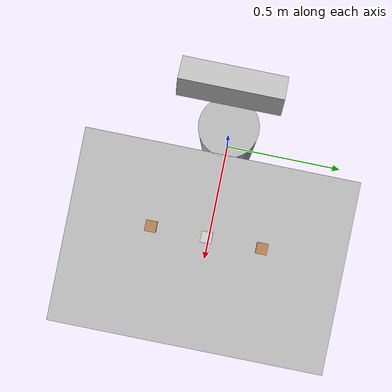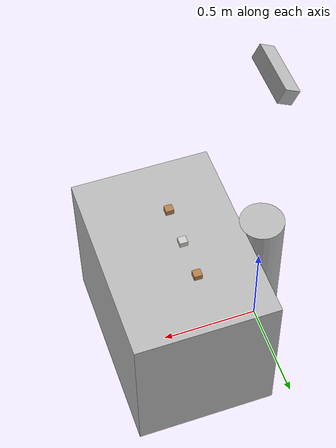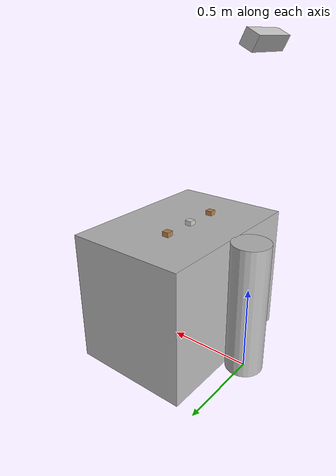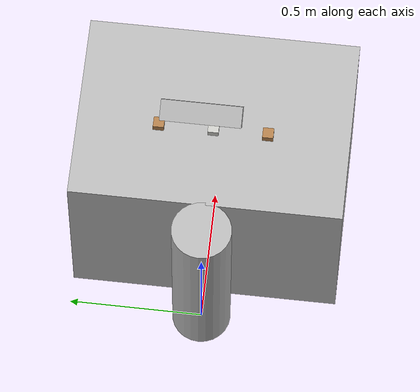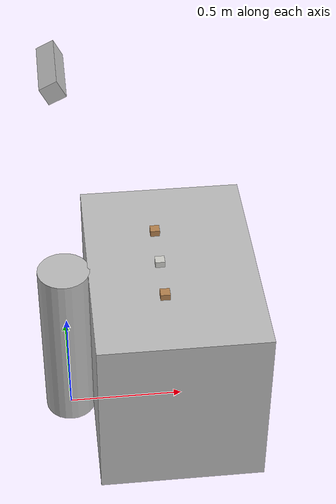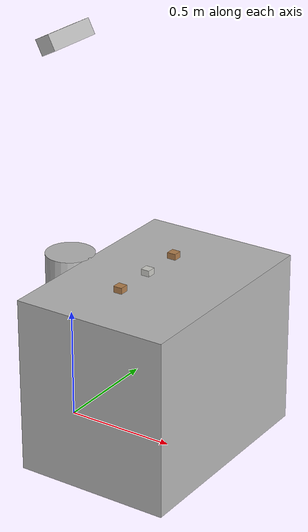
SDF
<sdf version="1.6">
 <world name="ur3_cubes">
  <gravity>0 0 -9.81</gravity>
  <physics name="default_physics" default="0" type="ode">
   <max_step_size>0.001</max_step_size>
   <real_time_factor>1</real_time_factor>
   <real_time_update_rate>1000</real_time_update_rate>
  </physics>
  <plugin name="ros_link_attacher_plugin" filename="libgazebo_ros_link_attacher.so"/>
  <scene><ambient>0.4 0.4 0.4 1</ambient><background>0.40 0.43 0.67 1</background><shadows>1</shadows></scene>
  <light name="sun" type="directional">
   <pose>0 0 10 0 -0 0</pose>
   <diffuse>1 1 1 1</diffuse>
   <specular>1 1 1 1</specular>
   <attenuation>
    <range>1000</range>
    <constant>0.9</constant>
    <linear>0.01</linear>
    <quadratic>0.001</quadratic>
   </attenuation>
   <direction>-0.5 0.1 -0.9</direction>
  </light>
  <model name="ur_base">
   <link name="ur3_base">
    <pose>0 0 0.39375 0 0 0</pose>
    <inertial>
     <mass>1</mass>
     <inertia><ixx>1</ixx><ixy>0</ixy><ixz>0</ixz><iyy>1</iyy><iyz>0</iyz><izz>1</izz></inertia>
    </inertial>
    <visual name="visual">
     <geometry><cylinder><length>0.7875</length><radius>0.11</radius></cylinder></geometry>
    </visual>
    <collision name="base_column">
     <geometry><cylinder><length>0.78</length><radius>0.11</radius></cylinder></geometry>
     <surface>
      <friction>
       <ode><mu>1</mu><mu2>1</mu2><fdir1>0 0 0</fdir1><slip1>0</slip1><slip2>0</slip2></ode>
       <torsional>
        <coefficient>1</coefficient>
        <patch_radius>0</patch_radius>
        <surface_radius>0</surface_radius>
        <use_patch_radius>1</use_patch_radius>
        <ode><slip>0</slip></ode>
       </torsional>
      </friction>
      <bounce><restitution_coefficient>0</restitution_coefficient><threshold>1e+06</threshold></bounce>
      <contact>
       <collide_without_contact>0</collide_without_contact>
       <collide_without_contact_bitmask>1</collide_without_contact_bitmask>
       <collide_bitmask>1</collide_bitmask>
       <ode>
        <soft_cfm>0</soft_cfm>
        <soft_erp>0.2</soft_erp>
        <kp>1e+13</kp>
        <kd>1</kd>
        <max_vel>0.01</max_vel>
        <min_depth>0</min_depth>
       </ode>
       <bullet>
        <split_impulse>1</split_impulse>
        <split_impulse_penetration_threshold>-0.01</split_impulse_penetration_threshold>
        <soft_cfm>0</soft_cfm>
        <soft_erp>0.2</soft_erp>
        <kp>1e+13</kp>
        <kd>1</kd>
       </bullet>
      </contact>
     </surface>
    </collision>
   </link>
   <static>1</static>
  </model>
  <model name="table">
   <link name="table::link">
    <pose>0.45 0 0.39375 0 0 0</pose>
    <inertial>
     <mass>1</mass>
     <inertia><ixx>1</ixx><ixy>0</ixy><ixz>0</ixz><iyy>1</iyy><iyz>0</iyz><izz>1</izz></inertia>
    </inertial>
    <visual name="visual">
     <geometry><box><size>0.7 1 0.7875</size></box></geometry>
     <material><shader type="pixel"><normal_map>__default__</normal_map></shader></material>
    </visual>
    <collision name="column">
     <geometry><box><size>0.7 1 0.7875</size></box></geometry>
     <surface>
      <friction>
       <ode><mu>1</mu><mu2>1</mu2><fdir1>0 0 0</fdir1><slip1>0</slip1><slip2>0</slip2></ode>
       <torsional>
        <coefficient>1</coefficient>
        <patch_radius>0</patch_radius>
        <surface_radius>0</surface_radius>
        <use_patch_radius>1</use_patch_radius>
        <ode><slip>0</slip></ode>
       </torsional>
      </friction>
      <bounce><restitution_coefficient>0</restitution_coefficient><threshold>1e+06</threshold></bounce>
      <contact>
       <collide_without_contact>0</collide_without_contact>
       <collide_without_contact_bitmask>1</collide_without_contact_bitmask>
       <collide_bitmask>1</collide_bitmask>
       <ode>
        <soft_cfm>0</soft_cfm>
        <soft_erp>0.2</soft_erp>
        <kp>1e+13</kp>
        <kd>1</kd>
        <max_vel>0.01</max_vel>
        <min_depth>0</min_depth>
       </ode>
       <bullet>
        <split_impulse>1</split_impulse>
        <split_impulse_penetration_threshold>-0.01</split_impulse_penetration_threshold>
        <soft_cfm>0</soft_cfm>
        <soft_erp>0.2</soft_erp>
        <kp>1e+13</kp>
        <kd>1</kd>
       </bullet>
      </contact>
     </surface>
    </collision>
   </link>
   <static>1</static>
  </model>
  <model name="kinect">
   <static>true</static>
   <pose>0 0 1.75 0 1.1 0</pose>
   <link name="link">
    <inertial><mass>0.1</mass></inertial>
    <collision name="collision"><geometry><box><size>0.073 0.276 0.072</size></box></geometry></collision>
    <visual name="visual"><geometry><box><size>0.073 0.276 0.072</size></box></geometry></visual>
    <sensor name="camera" type="depth">
     <update_rate>20</update_rate>
     <camera name="__default__">
      <horizontal_fov>1.0472</horizontal_fov>
      <image><width>640</width><height>480</height><format>R8G8B8</format></image>
      <clip><near>0.05</near><far>3</far></clip>
     </camera>
     <plugin name="camera_plugin" filename="libgazebo_ros_openni_kinect.so">
      <baseline>0.2</baseline>
      <alwaysOn>1</alwaysOn>
      <updateRate>0.0</updateRate>
      <cameraName>camera_ir</cameraName>
      <imageTopicName>/camera/color/image_raw</imageTopicName>
      <cameraInfoTopicName>/camera/color/camera_info</cameraInfoTopicName>
      <depthImageTopicName>/camera/depth/image_raw</depthImageTopicName>
      <depthImageCameraInfoTopicName>/camera/depth/camera_info</depthImageCameraInfoTopicName>
      <pointCloudTopicName>/camera/depth/points</pointCloudTopicName>
      <frameName>camera_link</frameName>
      <pointCloudCutoff>0.5</pointCloudCutoff>
      <pointCloudCutoffMax>3.0</pointCloudCutoffMax>
      <distortionK1>0</distortionK1>
      <distortionK2>0</distortionK2>
      <distortionK3>0</distortionK3>
      <distortionT1>0</distortionT1>
      <distortionT2>0</distortionT2>
      <CxPrime>0</CxPrime>
      <Cx>0</Cx>
      <Cy>0</Cy>
      <focalLength>0</focalLength>
      <hackBaseline>0</hackBaseline>
     </plugin>
    </sensor>
   </link>
  </model>
  <light name="user_directional_light_0" type="directional">
   <pose>0 0 10 0 -0 0</pose>
   <diffuse>1 1 1 1</diffuse>
   <specular>1 1 1 1</specular>
   <direction>0.1 0.1 -0.9</direction>
   <attenuation>
    <range>1000</range>
    <constant>0.5</constant>
    <linear>0.01</linear>
    <quadratic>0.001</quadratic>
   </attenuation>
  </light>
  <model name="cube1">
   <pose>0.4 -0.2 0.775 0 0 0</pose>
   <link name="link">
    <pose>0 0 0.02 0 0 0</pose>
    <inertial>
     <mass>0.0565</mass>
     <inertia>
      <ixx>2.3541666666666672e-05</ixx>
      <ixy>0</ixy>
      <ixz>0</ixz>
      <iyy>2.3541666666666672e-05</iyy>
      <iyz>0</iyz>
      <izz>2.3541666666666672e-05</izz>
     </inertia>
    </inertial>
    <collision name="collision">
     <geometry><box><size>0.04 0.04 0.04</size></box></geometry>
     <surface>
      <contact>
       <poissons_ratio>0.347</poissons_ratio>
       <elastic_modulus>8.8e+09</elastic_modulus>
       <ode><kp>100000</kp><kd>1</kd><max_vel>1.0</max_vel><min_depth>0.001</min_depth></ode>
      </contact>
      <friction>
       <torsional>
        <coefficient>1.0</coefficient>
        <use_patch_radius>0</use_patch_radius>
        <surface_radius>0.05</surface_radius>
       </torsional>
      </friction>
     </surface>
    </collision>
    <visual name="visual">
     <geometry><box><size>0.04 0.04 0.04</size></box></geometry>
     <material>
      <script><uri>model://media/materials/scripts/gazebo.material</uri><name>Gazebo/Wood</name></script>
     </material>
    </visual>
   </link>
  </model>
  <model name="cube2">
   <pose>0.4 0 0.775 0 0 0</pose>
   <link name="link">
    <pose>0 0 0.02 0 0 0</pose>
    <inertial>
     <mass>0.0565</mass>
     <inertia>
      <ixx>2.3541666666666672e-05</ixx>
      <ixy>0</ixy>
      <ixz>0</ixz>
      <iyy>2.3541666666666672e-05</iyy>
      <iyz>0</iyz>
      <izz>2.3541666666666672e-05</izz>
     </inertia>
    </inertial>
    <collision name="collision">
     <geometry><box><size>0.04 0.04 0.04</size></box></geometry>
     <surface>
      <contact>
       <poissons_ratio>0.347</poissons_ratio>
       <elastic_modulus>8.8e+09</elastic_modulus>
       <ode><kp>100000</kp><kd>1</kd><max_vel>1.0</max_vel><min_depth>0.001</min_depth></ode>
      </contact>
      <friction>
       <torsional>
        <coefficient>1.0</coefficient>
        <use_patch_radius>0</use_patch_radius>
        <surface_radius>0.05</surface_radius>
       </torsional>
      </friction>
     </surface>
    </collision>
    <visual name="visual">
     <geometry><box><size>0.04 0.04 0.04</size></box></geometry>
     <material>
      <script><uri>model://media/materials/scripts/gazebo.material</uri><name>CeilingTiled</name></script>
     </material>
    </visual>
   </link>
  </model>
  <model name="cube3">
   <pose>0.4 0.2 0.775 0 0 0</pose>
   <link name="link">
    <pose>0 0 0.02 0 0 0</pose>
    <inertial>
     <mass>0.0565</mass>
     <inertia>
      <ixx>2.3541666666666672e-05</ixx>
      <ixy>0</ixy>
      <ixz>0</ixz>
      <iyy>2.3541666666666672e-05</iyy>
      <iyz>0</iyz>
      <izz>2.3541666666666672e-05</izz>
     </inertia>
    </inertial>
    <collision name="collision">
     <geometry><box><size>0.04 0.04 0.04</size></box></geometry>
     <surface>
      <contact>
       <poissons_ratio>0.347</poissons_ratio>
       <elastic_modulus>8.8e+09</elastic_modulus>
       <ode><kp>100000</kp><kd>1</kd><max_vel>1.0</max_vel><min_depth>0.001</min_depth></ode>
      </contact>
      <friction>
       <torsional>
        <coefficient>1.0</coefficient>
        <use_patch_radius>0</use_patch_radius>
        <surface_radius>0.05</surface_radius>
       </torsional>
      </friction>
     </surface>
    </collision>
    <visual name="visual">
     <geometry><box><size>0.04 0.04 0.04</size></box></geometry>
     <material>
      <script><uri>model://media/materials/scripts/gazebo.material</uri><name>Gazebo/WoodPallet</name></script>
     </material>
    </visual>
   </link>
  </model>
 </world>
</sdf>
